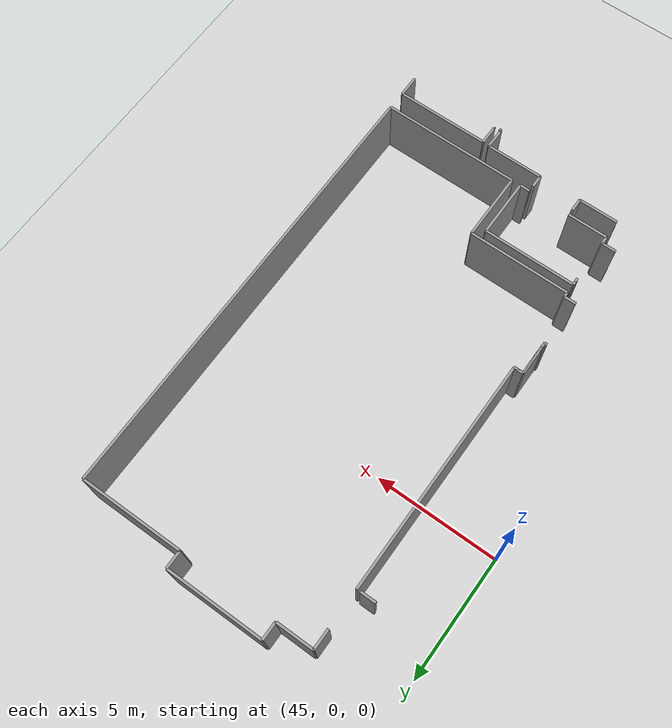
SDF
<sdf version="1.6">
 <world name="default">
  <model name="ground_plane">
   <static>1</static>
   <link name="link">
    <collision name="collision">
     <geometry><plane><normal>0 0 1</normal><size>100 100</size></plane></geometry>
     <surface><friction><ode><mu>100</mu><mu2>50</mu2></ode></friction></surface>
    </collision>
    <visual name="visual">
     <cast_shadows>0</cast_shadows>
     <geometry><plane><normal>0 0 1</normal><size>100 100</size></plane></geometry>
     <material>
      <script><uri>file://media/materials/scripts/gazebo.material</uri><name>Gazebo/Grey</name></script>
     </material>
    </visual>
   </link>
  </model>
  <model name="0510030939_A_40_1_103">
   <static>1</static>
   <link name="Wall_221">
    <collision name="Wall_221_Collision">
     <geometry><box><size>1.16567652572 0.1 2.5</size></box></geometry>
     <pose>0.582838262859 0 1.25 0 0 0</pose>
    </collision>
    <visual name="Wall_221_Visual">
     <pose>0.582838262859 0 1.25 0 0 0</pose>
     <geometry><box><size>1.16567652572 0.1 2.5</size></box></geometry>
     <material>
      <script><uri>file://media/materials/scripts/gazebo.material</uri><name>Gazebo/Grey</name></script>
      <ambient>1 1 1 1</ambient>
     </material>
    </visual>
    <pose>105.378187248 -24.2395399816 0 0 0 1.57079632679</pose>
   </link>
   <link name="Wall_222">
    <collision name="Wall_222_Collision">
     <geometry><box><size>0.370302125361 0.1 2.5</size></box></geometry>
     <pose>0.185151062681 0 1.25 0 0 0</pose>
    </collision>
    <visual name="Wall_222_Visual">
     <pose>0.185151062681 0 1.25 0 0 0</pose>
     <geometry><box><size>0.370302125361 0.1 2.5</size></box></geometry>
     <material>
      <script><uri>file://media/materials/scripts/gazebo.material</uri><name>Gazebo/Grey</name></script>
      <ambient>1 1 1 1</ambient>
     </material>
    </visual>
    <pose>105.378187248 -23.0738634559 0 0 0 0.0</pose>
   </link>
   <link name="Wall_223">
    <collision name="Wall_223_Collision">
     <geometry><box><size>1.21981129078 0.1 2.5</size></box></geometry>
     <pose>0.609905645392 0 1.25 0 0 0</pose>
    </collision>
    <visual name="Wall_223_Visual">
     <pose>0.609905645392 0 1.25 0 0 0</pose>
     <geometry><box><size>1.21981129078 0.1 2.5</size></box></geometry>
     <material>
      <script><uri>file://media/materials/scripts/gazebo.material</uri><name>Gazebo/Grey</name></script>
      <ambient>1 1 1 1</ambient>
     </material>
    </visual>
    <pose>105.382253709 -24.2977412079 0 0 0 1.57079632679</pose>
   </link>
   <link name="Wall_224">
    <collision name="Wall_224_Collision">
     <geometry><box><size>0.372716586714 0.1 2.5</size></box></geometry>
     <pose>0.186358293357 0 1.25 0 0 0</pose>
    </collision>
    <visual name="Wall_224_Visual">
     <pose>0.186358293357 0 1.25 0 0 0</pose>
     <geometry><box><size>0.372716586714 0.1 2.5</size></box></geometry>
     <material>
      <script><uri>file://media/materials/scripts/gazebo.material</uri><name>Gazebo/Grey</name></script>
      <ambient>1 1 1 1</ambient>
     </material>
    </visual>
    <pose>105.382253709 -23.0779299171 0 0 0 0.0</pose>
   </link>
   <link name="Wall_225">
    <collision name="Wall_225_Collision">
     <geometry><box><size>9.37751374019 0.1 2.5</size></box></geometry>
     <pose>4.6887568701 0 1.25 0 0 0</pose>
    </collision>
    <visual name="Wall_225_Visual">
     <pose>4.6887568701 0 1.25 0 0 0</pose>
     <geometry><box><size>9.37751374019 0.1 2.5</size></box></geometry>
     <material>
      <script><uri>file://media/materials/scripts/gazebo.material</uri><name>Gazebo/Grey</name></script>
      <ambient>1 1 1 1</ambient>
     </material>
    </visual>
    <pose>105.754970296 -23.0779299171 0 0 0 1.57079632679</pose>
   </link>
   <link name="Wall_226">
    <collision name="Wall_226_Collision">
     <geometry><box><size>0.801982399848 0.1 2.5</size></box></geometry>
     <pose>0.400991199924 0 1.25 0 0 0</pose>
    </collision>
    <visual name="Wall_226_Visual">
     <pose>0.400991199924 0 1.25 0 0 0</pose>
     <geometry><box><size>0.801982399848 0.1 2.5</size></box></geometry>
     <material>
      <script><uri>file://media/materials/scripts/gazebo.material</uri><name>Gazebo/Grey</name></script>
      <ambient>1 1 1 1</ambient>
     </material>
    </visual>
    <pose>105.754970296 -12.171553833 0 0 0 1.57079632679</pose>
   </link>
   <link name="Wall_227">
    <collision name="Wall_227_Collision">
     <geometry><box><size>1.49899926931 0.1 2.5</size></box></geometry>
     <pose>0.749499634654 0 1.25 0 0 0</pose>
    </collision>
    <visual name="Wall_227_Visual">
     <pose>0.749499634654 0 1.25 0 0 0</pose>
     <geometry><box><size>1.49899926931 0.1 2.5</size></box></geometry>
     <material>
      <script><uri>file://media/materials/scripts/gazebo.material</uri><name>Gazebo/Grey</name></script>
      <ambient>1 1 1 1</ambient>
     </material>
    </visual>
    <pose>105.754970296 -11.3695714331 0 0 0 0.0</pose>
   </link>
   <link name="Wall_228">
    <collision name="Wall_228_Collision">
     <geometry><box><size>0.704768561172 0.1 2.5</size></box></geometry>
     <pose>0.352384280586 0 1.25 0 0 0</pose>
    </collision>
    <visual name="Wall_228_Visual">
     <pose>0.352384280586 0 1.25 0 0 0</pose>
     <geometry><box><size>0.704768561172 0.1 2.5</size></box></geometry>
     <material>
      <script><uri>file://media/materials/scripts/gazebo.material</uri><name>Gazebo/Grey</name></script>
      <ambient>1 1 1 1</ambient>
     </material>
    </visual>
    <pose>107.253969565 -11.3695714331 0 0 0 1.57079632679</pose>
   </link>
   <link name="Wall_229">
    <collision name="Wall_229_Collision">
     <geometry><box><size>3.90558185342 0.1 2.5</size></box></geometry>
     <pose>1.95279092671 0 1.25 0 0 0</pose>
    </collision>
    <visual name="Wall_229_Visual">
     <pose>1.95279092671 0 1.25 0 0 0</pose>
     <geometry><box><size>3.90558185342 0.1 2.5</size></box></geometry>
     <material>
      <script><uri>file://media/materials/scripts/gazebo.material</uri><name>Gazebo/Grey</name></script>
      <ambient>1 1 1 1</ambient>
     </material>
    </visual>
    <pose>107.253969565 -10.6648028719 0 0 0 0.0</pose>
   </link>
   <link name="Wall_230">
    <collision name="Wall_230_Collision">
     <geometry><box><size>0.701972869079 0.1 2.5</size></box></geometry>
     <pose>0.35098643454 0 1.25 0 0 0</pose>
    </collision>
    <visual name="Wall_230_Visual">
     <pose>0.35098643454 0 1.25 0 0 0</pose>
     <geometry><box><size>0.701972869079 0.1 2.5</size></box></geometry>
     <material>
      <script><uri>file://media/materials/scripts/gazebo.material</uri><name>Gazebo/Grey</name></script>
      <ambient>1 1 1 1</ambient>
     </material>
    </visual>
    <pose>111.159551418 -10.6648028719 0 0 0 -1.57079632679</pose>
   </link>
   <link name="Wall_231">
    <collision name="Wall_231_Collision">
     <geometry><box><size>4.16075229533 0.1 2.5</size></box></geometry>
     <pose>2.08037614766 0 1.25 0 0 0</pose>
    </collision>
    <visual name="Wall_231_Visual">
     <pose>2.08037614766 0 1.25 0 0 0</pose>
     <geometry><box><size>4.16075229533 0.1 2.5</size></box></geometry>
     <material>
      <script><uri>file://media/materials/scripts/gazebo.material</uri><name>Gazebo/Grey</name></script>
      <ambient>1 1 1 1</ambient>
     </material>
    </visual>
    <pose>111.159551418 -11.366775741 0 0 0 0.0</pose>
   </link>
   <link name="Wall_232">
    <collision name="Wall_232_Collision">
     <geometry><box><size>17.9235632366 0.1 2.5</size></box></geometry>
     <pose>8.96178161832 0 1.25 0 0 0</pose>
    </collision>
    <visual name="Wall_232_Visual">
     <pose>8.96178161832 0 1.25 0 0 0</pose>
     <geometry><box><size>17.9235632366 0.1 2.5</size></box></geometry>
     <material>
      <script><uri>file://media/materials/scripts/gazebo.material</uri><name>Gazebo/Grey</name></script>
      <ambient>1 1 1 1</ambient>
     </material>
    </visual>
    <pose>115.320303714 -11.366775741 0 0 0 -1.57079632679</pose>
   </link>
   <link name="Wall_233">
    <collision name="Wall_233_Collision">
     <geometry><box><size>5.48349588588 0.1 2.5</size></box></geometry>
     <pose>2.74174794294 0 1.25 0 0 0</pose>
    </collision>
    <visual name="Wall_233_Visual">
     <pose>2.74174794294 0 1.25 0 0 0</pose>
     <geometry><box><size>5.48349588588 0.1 2.5</size></box></geometry>
     <material>
      <script><uri>file://media/materials/scripts/gazebo.material</uri><name>Gazebo/Grey</name></script>
      <ambient>1 1 1 1</ambient>
     </material>
    </visual>
    <pose>115.320303714 -29.2903389777 0 0 0 3.14159265359</pose>
   </link>
   <link name="Wall_234">
    <collision name="Wall_234_Collision">
     <geometry><box><size>2.70927979159 0.1 2.5</size></box></geometry>
     <pose>1.3546398958 0 1.25 0 0 0</pose>
    </collision>
    <visual name="Wall_234_Visual">
     <pose>1.3546398958 0 1.25 0 0 0</pose>
     <geometry><box><size>2.70927979159 0.1 2.5</size></box></geometry>
     <material>
      <script><uri>file://media/materials/scripts/gazebo.material</uri><name>Gazebo/Grey</name></script>
      <ambient>1 1 1 1</ambient>
     </material>
    </visual>
    <pose>109.836807828 -29.2903389777 0 0 0 1.57079632679</pose>
   </link>
   <link name="Wall_235">
    <collision name="Wall_235_Collision">
     <geometry><box><size>4.08819137783 0.1 2.5</size></box></geometry>
     <pose>2.04409568892 0 1.25 0 0 0</pose>
    </collision>
    <visual name="Wall_235_Visual">
     <pose>2.04409568892 0 1.25 0 0 0</pose>
     <geometry><box><size>4.08819137783 0.1 2.5</size></box></geometry>
     <material>
      <script><uri>file://media/materials/scripts/gazebo.material</uri><name>Gazebo/Grey</name></script>
      <ambient>1 1 1 1</ambient>
     </material>
    </visual>
    <pose>109.836807828 -26.5810591861 0 0 0 3.14159265359</pose>
   </link>
   <link name="Wall_236">
    <collision name="Wall_236_Collision">
     <geometry><box><size>0.196842138704 0.1 2.5</size></box></geometry>
     <pose>0.0984210693522 0 1.25 0 0 0</pose>
    </collision>
    <visual name="Wall_236_Visual">
     <pose>0.0984210693522 0 1.25 0 0 0</pose>
     <geometry><box><size>0.196842138704 0.1 2.5</size></box></geometry>
     <material>
      <script><uri>file://media/materials/scripts/gazebo.material</uri><name>Gazebo/Grey</name></script>
      <ambient>1 1 1 1</ambient>
     </material>
    </visual>
    <pose>105.74861645 -26.5810591861 0 0 0 1.57079632679</pose>
   </link>
   <link name="Wall_237">
    <collision name="Wall_237_Collision">
     <geometry><box><size>0.467134733297 0.1 2.5</size></box></geometry>
     <pose>0.233567366649 0 1.25 0 0 0</pose>
    </collision>
    <visual name="Wall_237_Visual">
     <pose>0.233567366649 0 1.25 0 0 0</pose>
     <geometry><box><size>0.467134733297 0.1 2.5</size></box></geometry>
     <material>
      <script><uri>file://media/materials/scripts/gazebo.material</uri><name>Gazebo/Grey</name></script>
      <ambient>1 1 1 1</ambient>
     </material>
    </visual>
    <pose>105.74861645 -26.3842170474 0 0 0 3.14159265359</pose>
   </link>
   <link name="Wall_240">
    <collision name="Wall_240_Collision">
     <geometry><box><size>0.0977221463291 0.1 2.5</size></box></geometry>
     <pose>0.0488610731645 0 1.25 0 0 0</pose>
    </collision>
    <visual name="Wall_240_Visual">
     <pose>0.0488610731645 0 1.25 0 0 0</pose>
     <geometry><box><size>0.0977221463291 0.1 2.5</size></box></geometry>
     <material>
      <script><uri>file://media/materials/scripts/gazebo.material</uri><name>Gazebo/Grey</name></script>
      <ambient>1 1 1 1</ambient>
     </material>
    </visual>
    <pose>105.281481717 -24.4643390412 0 0 0 0.0</pose>
   </link>
   <link name="Wall_241">
    <collision name="Wall_241_Collision">
     <geometry><box><size>0.224801358354 0.1 2.5</size></box></geometry>
     <pose>0.112400679177 0 1.25 0 0 0</pose>
    </collision>
    <visual name="Wall_241_Visual">
     <pose>0.112400679177 0 1.25 0 0 0</pose>
     <geometry><box><size>0.224801358354 0.1 2.5</size></box></geometry>
     <material>
      <script><uri>file://media/materials/scripts/gazebo.material</uri><name>Gazebo/Grey</name></script>
      <ambient>1 1 1 1</ambient>
     </material>
    </visual>
    <pose>105.379203863 -24.4643390412 0 0 0 1.57531862497</pose>
   </link>
   <link name="Wall_242">
    <collision name="Wall_242_Collision">
     <geometry><box><size>0.132922451314 0.1 2.5</size></box></geometry>
     <pose>0.0664612256568 0 1.25 0 0 0</pose>
    </collision>
    <visual name="Wall_242_Visual">
     <pose>0.0664612256568 0 1.25 0 0 0</pose>
     <geometry><box><size>0.132922451314 0.1 2.5</size></box></geometry>
     <material>
      <script><uri>file://media/materials/scripts/gazebo.material</uri><name>Gazebo/Grey</name></script>
      <ambient>1 1 1 1</ambient>
     </material>
    </visual>
    <pose>105.747853989 -27.1018203768 0 0 0 1.57079632679</pose>
   </link>
   <link name="Wall_243">
    <collision name="Wall_243_Collision">
     <geometry><box><size>3.71280617594 0.1 2.5</size></box></geometry>
     <pose>1.85640308797 0 1.25 0 0 0</pose>
    </collision>
    <visual name="Wall_243_Visual">
     <pose>1.85640308797 0 1.25 0 0 0</pose>
     <geometry><box><size>3.71280617594 0.1 2.5</size></box></geometry>
     <material>
      <script><uri>file://media/materials/scripts/gazebo.material</uri><name>Gazebo/Grey</name></script>
      <ambient>1 1 1 1</ambient>
     </material>
    </visual>
    <pose>105.747853989 -26.9688979255 0 0 0 0.0</pose>
   </link>
   <link name="Wall_244">
    <collision name="Wall_244_Collision">
     <geometry><box><size>2.32105982146 0.1 2.5</size></box></geometry>
     <pose>1.16052991073 0 1.25 0 0 0</pose>
    </collision>
    <visual name="Wall_244_Visual">
     <pose>1.16052991073 0 1.25 0 0 0</pose>
     <geometry><box><size>2.32105982146 0.1 2.5</size></box></geometry>
     <material>
      <script><uri>file://media/materials/scripts/gazebo.material</uri><name>Gazebo/Grey</name></script>
      <ambient>1 1 1 1</ambient>
     </material>
    </visual>
    <pose>109.460660165 -26.9688979255 0 0 0 -1.57079632679</pose>
   </link>
   <link name="Wall_245">
    <collision name="Wall_245_Collision">
     <geometry><box><size>0.397242430981 0.1 2.5</size></box></geometry>
     <pose>0.198621215491 0 1.25 0 0 0</pose>
    </collision>
    <visual name="Wall_245_Visual">
     <pose>0.198621215491 0 1.25 0 0 0</pose>
     <geometry><box><size>0.397242430981 0.1 2.5</size></box></geometry>
     <material>
      <script><uri>file://media/materials/scripts/gazebo.material</uri><name>Gazebo/Grey</name></script>
      <ambient>1 1 1 1</ambient>
     </material>
    </visual>
    <pose>109.460660165 -29.2899577469 0 0 0 3.14159265359</pose>
   </link>
   <link name="Wall_246">
    <collision name="Wall_246_Collision">
     <geometry><box><size>1.60841249166 0.1 2.5</size></box></geometry>
     <pose>0.80420624583 0 1.25 0 0 0</pose>
    </collision>
    <visual name="Wall_246_Visual">
     <pose>0.80420624583 0 1.25 0 0 0</pose>
     <geometry><box><size>1.60841249166 0.1 2.5</size></box></geometry>
     <material>
      <script><uri>file://media/materials/scripts/gazebo.material</uri><name>Gazebo/Grey</name></script>
      <ambient>1 1 1 1</ambient>
     </material>
    </visual>
    <pose>107.362366172 -29.2899577469 0 0 0 3.14159265359</pose>
   </link>
   <link name="Wall_247">
    <collision name="Wall_247_Collision">
     <geometry><box><size>0.303205515138 0.1 2.5</size></box></geometry>
     <pose>0.151602757569 0 1.25 0 0 0</pose>
    </collision>
    <visual name="Wall_247_Visual">
     <pose>0.151602757569 0 1.25 0 0 0</pose>
     <geometry><box><size>0.303205515138 0.1 2.5</size></box></geometry>
     <material>
      <script><uri>file://media/materials/scripts/gazebo.material</uri><name>Gazebo/Grey</name></script>
      <ambient>1 1 1 1</ambient>
     </material>
    </visual>
    <pose>105.75395368 -29.2899577469 0 0 0 1.57079632679</pose>
   </link>
   <link name="Wall_248">
    <collision name="Wall_248_Collision">
     <geometry><box><size>0.563967341233 0.1 2.5</size></box></geometry>
     <pose>0.281983670617 0 1.25 0 0 0</pose>
    </collision>
    <visual name="Wall_248_Visual">
     <pose>0.281983670617 0 1.25 0 0 0</pose>
     <geometry><box><size>0.563967341233 0.1 2.5</size></box></geometry>
     <material>
      <script><uri>file://media/materials/scripts/gazebo.material</uri><name>Gazebo/Grey</name></script>
      <ambient>1 1 1 1</ambient>
     </material>
    </visual>
    <pose>105.75395368 -28.9867522318 0 0 0 3.14159265359</pose>
   </link>
   <link name="Wall_250">
    <collision name="Wall_250_Collision">
     <geometry><box><size>0.157947350782 0.1 2.5</size></box></geometry>
     <pose>0.0789736753912 0 1.25 0 0 0</pose>
    </collision>
    <visual name="Wall_250_Visual">
     <pose>0.0789736753912 0 1.25 0 0 0</pose>
     <geometry><box><size>0.157947350782 0.1 2.5</size></box></geometry>
     <material>
      <script><uri>file://media/materials/scripts/gazebo.material</uri><name>Gazebo/Grey</name></script>
      <ambient>1 1 1 1</ambient>
     </material>
    </visual>
    <pose>105.75395368 -27.2596499031 0 0 0 1.60942444557</pose>
   </link>
   <link name="Wall_252">
    <collision name="Wall_252_Collision">
     <geometry><box><size>1.58909680084 0.1 2.5</size></box></geometry>
     <pose>0.794548400419 0 1.25 0 0 0</pose>
    </collision>
    <visual name="Wall_252_Visual">
     <pose>0.794548400419 0 1.25 0 0 0</pose>
     <geometry><box><size>1.58909680084 0.1 2.5</size></box></geometry>
     <material>
      <script><uri>file://media/materials/scripts/gazebo.material</uri><name>Gazebo/Grey</name></script>
      <ambient>1 1 1 1</ambient>
     </material>
    </visual>
    <pose>105.764501064 -30.0408552276 0 0 0 0.0</pose>
   </link>
   <link name="Wall_253">
    <collision name="Wall_253_Collision">
     <geometry><box><size>0.518219652445 0.1 2.5</size></box></geometry>
     <pose>0.259109826222 0 1.25 0 0 0</pose>
    </collision>
    <visual name="Wall_253_Visual">
     <pose>0.259109826222 0 1.25 0 0 0</pose>
     <geometry><box><size>0.518219652445 0.1 2.5</size></box></geometry>
     <material>
      <script><uri>file://media/materials/scripts/gazebo.material</uri><name>Gazebo/Grey</name></script>
      <ambient>1 1 1 1</ambient>
     </material>
    </visual>
    <pose>107.353597865 -30.0408552276 0 0 0 1.57079632679</pose>
   </link>
   <link name="Wall_254">
    <collision name="Wall_254_Collision">
     <geometry><box><size>0.505257807288 0.1 2.5</size></box></geometry>
     <pose>0.252628903644 0 1.25 0 0 0</pose>
    </collision>
    <visual name="Wall_254_Visual">
     <pose>0.252628903644 0 1.25 0 0 0</pose>
     <geometry><box><size>0.505257807288 0.1 2.5</size></box></geometry>
     <material>
      <script><uri>file://media/materials/scripts/gazebo.material</uri><name>Gazebo/Grey</name></script>
      <ambient>1 1 1 1</ambient>
     </material>
    </visual>
    <pose>109.060113734 -29.5226355752 0 0 0 -1.57079632679</pose>
   </link>
   <link name="Wall_255">
    <collision name="Wall_255_Collision">
     <geometry><box><size>2.2746767481 0.1 2.5</size></box></geometry>
     <pose>1.13733837405 0 1.25 0 0 0</pose>
    </collision>
    <visual name="Wall_255_Visual">
     <pose>1.13733837405 0 1.25 0 0 0</pose>
     <geometry><box><size>2.2746767481 0.1 2.5</size></box></geometry>
     <material>
      <script><uri>file://media/materials/scripts/gazebo.material</uri><name>Gazebo/Grey</name></script>
      <ambient>1 1 1 1</ambient>
     </material>
    </visual>
    <pose>109.060113734 -30.0278933825 0 0 0 0.0</pose>
   </link>
   <link name="Wall_256">
    <collision name="Wall_256_Collision">
     <geometry><box><size>0.794230708136 0.1 2.5</size></box></geometry>
     <pose>0.397115354068 0 1.25 0 0 0</pose>
    </collision>
    <visual name="Wall_256_Visual">
     <pose>0.397115354068 0 1.25 0 0 0</pose>
     <geometry><box><size>0.794230708136 0.1 2.5</size></box></geometry>
     <material>
      <script><uri>file://media/materials/scripts/gazebo.material</uri><name>Gazebo/Grey</name></script>
      <ambient>1 1 1 1</ambient>
     </material>
    </visual>
    <pose>111.334790482 -30.0278933825 0 0 0 -1.57079632679</pose>
   </link>
   <link name="Wall_257">
    <collision name="Wall_257_Collision">
     <geometry><box><size>0.0297359977126 0.1 2.5</size></box></geometry>
     <pose>0.0148679988563 0 1.25 0 0 0</pose>
    </collision>
    <visual name="Wall_257_Visual">
     <pose>0.0148679988563 0 1.25 0 0 0</pose>
     <geometry><box><size>0.0297359977126 0.1 2.5</size></box></geometry>
     <material>
      <script><uri>file://media/materials/scripts/gazebo.material</uri><name>Gazebo/Grey</name></script>
      <ambient>1 1 1 1</ambient>
     </material>
    </visual>
    <pose>111.334790482 -30.8221240906 0 0 0 0.0</pose>
   </link>
   <link name="Wall_258">
    <collision name="Wall_258_Collision">
     <geometry><box><size>0.0934015312768 0.1 2.5</size></box></geometry>
     <pose>0.0467007656384 0 1.25 0 0 0</pose>
    </collision>
    <visual name="Wall_258_Visual">
     <pose>0.0467007656384 0 1.25 0 0 0</pose>
     <geometry><box><size>0.0934015312768 0.1 2.5</size></box></geometry>
     <material>
      <script><uri>file://media/materials/scripts/gazebo.material</uri><name>Gazebo/Grey</name></script>
      <ambient>1 1 1 1</ambient>
     </material>
    </visual>
    <pose>111.36452648 -30.8221240906 0 0 0 -1.57079632679</pose>
   </link>
   <link name="Wall_284">
    <collision name="Wall_284_Collision">
     <geometry><box><size>0.0271944594466 0.1 2.5</size></box></geometry>
     <pose>0.0135972297233 0 1.25 0 0 0</pose>
    </collision>
    <visual name="Wall_284_Visual">
     <pose>0.0135972297233 0 1.25 0 0 0</pose>
     <geometry><box><size>0.0271944594466 0.1 2.5</size></box></geometry>
     <material>
      <script><uri>file://media/materials/scripts/gazebo.material</uri><name>Gazebo/Grey</name></script>
      <ambient>1 1 1 1</ambient>
     </material>
    </visual>
    <pose>111.582590463 -30.8042062458 0 0 0 0.0</pose>
   </link>
   <link name="Wall_285">
    <collision name="Wall_285_Collision">
     <geometry><box><size>0.757124249452 0.1 2.5</size></box></geometry>
     <pose>0.378562124726 0 1.25 0 0 0</pose>
    </collision>
    <visual name="Wall_285_Visual">
     <pose>0.378562124726 0 1.25 0 0 0</pose>
     <geometry><box><size>0.757124249452 0.1 2.5</size></box></geometry>
     <material>
      <script><uri>file://media/materials/scripts/gazebo.material</uri><name>Gazebo/Grey</name></script>
      <ambient>1 1 1 1</ambient>
     </material>
    </visual>
    <pose>111.609784922 -30.8042062458 0 0 0 1.57079632679</pose>
   </link>
   <link name="Wall_286">
    <collision name="Wall_286_Collision">
     <geometry><box><size>3.69946310004 0.1 2.5</size></box></geometry>
     <pose>1.84973155002 0 1.25 0 0 0</pose>
    </collision>
    <visual name="Wall_286_Visual">
     <pose>1.84973155002 0 1.25 0 0 0</pose>
     <geometry><box><size>3.69946310004 0.1 2.5</size></box></geometry>
     <material>
      <script><uri>file://media/materials/scripts/gazebo.material</uri><name>Gazebo/Grey</name></script>
      <ambient>1 1 1 1</ambient>
     </material>
    </visual>
    <pose>111.609784922 -30.0470819964 0 0 0 0.0</pose>
   </link>
   <link name="Wall_287">
    <collision name="Wall_287_Collision">
     <geometry><box><size>0.835022397306 0.1 2.5</size></box></geometry>
     <pose>0.417511198653 0 1.25 0 0 0</pose>
    </collision>
    <visual name="Wall_287_Visual">
     <pose>0.417511198653 0 1.25 0 0 0</pose>
     <geometry><box><size>0.835022397306 0.1 2.5</size></box></geometry>
     <material>
      <script><uri>file://media/materials/scripts/gazebo.material</uri><name>Gazebo/Grey</name></script>
      <ambient>1 1 1 1</ambient>
     </material>
    </visual>
    <pose>115.309248022 -30.0470819964 0 0 0 -1.57079632679</pose>
   </link>
   <link name="Wall_302">
    <collision name="Wall_302_Collision">
     <geometry><box><size>0.610477491502 0.1 2.5</size></box></geometry>
     <pose>0.305238745751 0 1.25 0 0 0</pose>
    </collision>
    <visual name="Wall_302_Visual">
     <pose>0.305238745751 0 1.25 0 0 0</pose>
     <geometry><box><size>0.610477491502 0.1 2.5</size></box></geometry>
     <material>
      <script><uri>file://media/materials/scripts/gazebo.material</uri><name>Gazebo/Grey</name></script>
      <ambient>1 1 1 1</ambient>
     </material>
    </visual>
    <pose>105.609085999 -13.7138863297 0 0 0 3.14159265359</pose>
   </link>
   <pose>-57.65 17.6622597452 0 0 0 0</pose>
  </model>
 </world>
</sdf>
